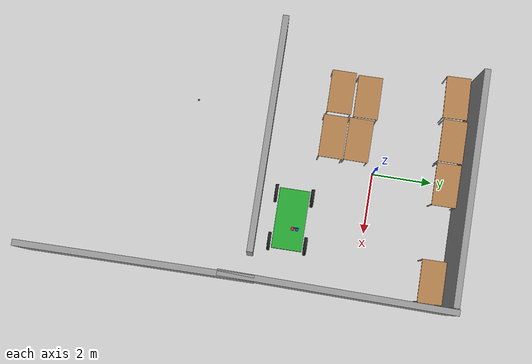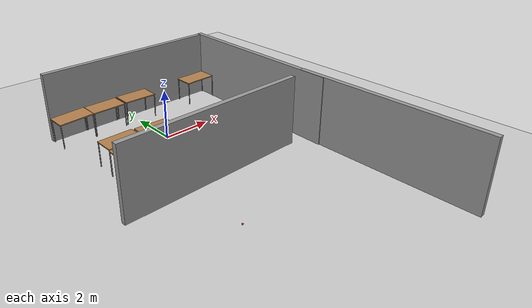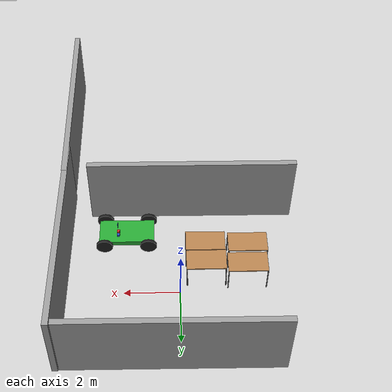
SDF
<sdf version="1.6">
 <world name="default">
  <light name="sun" type="directional">
   <pose>0 0 15 0 -0 0</pose>
   <diffuse>1 1 1 1</diffuse>
   <specular>0.1 0.1 0.1 1</specular>
   <attenuation>
    <range>1000</range>
    <constant>0.9</constant>
    <linear>0.01</linear>
    <quadratic>0.001</quadratic>
   </attenuation>
   <direction>-0.5 0.5 -1</direction>
  </light>
  <model name="ground_plane">
   <static>1</static>
   <link name="link">
    <collision name="collision">
     <geometry><plane><normal>0 0 1</normal><size>100 100</size></plane></geometry>
     <surface><friction><ode><mu>100</mu><mu2>50</mu2></ode></friction></surface>
    </collision>
    <visual name="visual">
     <transparency>1</transparency>
     <cast_shadows>0</cast_shadows>
     <geometry><plane><normal>0 0 1</normal><size>100 100</size></plane></geometry>
     <material>
      <script><uri>file://media/materials/scripts/gazebo.material</uri><name>Gazebo/Grey</name></script>
     </material>
    </visual>
   </link>
  </model>
  <gravity>0 0 -9.8</gravity>
  <magnetic_field>6e-06 2.3e-05 -4.2e-05</magnetic_field>
  <atmosphere type="adiabatic"/>
  <physics name="default_physics" default="0" type="ode">
   <max_step_size>0.001</max_step_size>
   <real_time_factor>1</real_time_factor>
   <real_time_update_rate>1000</real_time_update_rate>
  </physics>
  <scene><ambient>0.4 0.4 0.4 1</ambient><background>0.7 0.7 0.7 1</background><shadows>1</shadows></scene>
  <spherical_coordinates>
   <surface_model>EARTH_WGS84</surface_model>
   <latitude_deg>0</latitude_deg>
   <longitude_deg>0</longitude_deg>
   <elevation>0</elevation>
   <heading_deg>0</heading_deg>
  </spherical_coordinates>
  <model name="grey_wall">
   <static>1</static>
   <link name="link">
    <pose>0 0 1.4 0 -0 0</pose>
    <collision name="collision"><geometry><box><size>7.5 0.2 2.8</size></box></geometry></collision>
    <visual name="visual">
     <cast_shadows>0</cast_shadows>
     <geometry><box><size>7.5 0.2 2.8</size></box></geometry>
     <material>
      <script>
       <uri>model://grey_wall/materials/scripts</uri>
       <uri>model://grey_wall/materials/textures</uri>
       <name>vrc/grey_wall</name>
      </script>
     </material>
    </visual>
   </link>
   <pose>0.279501 2.87102 0 0 -0 0</pose>
  </model>
  <model name="table">
   <static>0</static>
   <link name="link">
    <collision name="surface">
     <pose>0 0 1 0 -0 0</pose>
     <geometry><box><size>1.5 0.8 0.03</size></box></geometry>
     <surface><friction><ode><mu>0.6</mu><mu2>0.6</mu2></ode></friction></surface>
    </collision>
    <visual name="visual1">
     <pose>0 0 1 0 -0 0</pose>
     <geometry><box><size>1.4 0.8 0.04</size></box></geometry>
     <material>
      <script><uri>file://media/materials/scripts/gazebo.material</uri><name>Gazebo/Wood</name></script>
     </material>
    </visual>
    <collision name="front_left_leg">
     <pose>0.68 0.38 0.5 0 -0 0</pose>
     <geometry><cylinder><radius>0.02</radius><length>1</length></cylinder></geometry>
    </collision>
    <visual name="front_left_leg">
     <pose>0.68 0.38 0.5 0 -0 0</pose>
     <geometry><cylinder><radius>0.02</radius><length>1</length></cylinder></geometry>
     <material>
      <script><uri>file://media/materials/scripts/gazebo.material</uri><name>Gazebo/Grey</name></script>
     </material>
    </visual>
    <collision name="front_right_leg">
     <pose>0.68 -0.38 0.5 0 -0 0</pose>
     <geometry><cylinder><radius>0.02</radius><length>1</length></cylinder></geometry>
    </collision>
    <visual name="front_right_leg">
     <pose>0.68 -0.38 0.5 0 -0 0</pose>
     <geometry><cylinder><radius>0.02</radius><length>1</length></cylinder></geometry>
     <material>
      <script><uri>file://media/materials/scripts/gazebo.material</uri><name>Gazebo/Grey</name></script>
     </material>
    </visual>
    <collision name="back_right_leg">
     <pose>-0.68 -0.38 0.5 0 -0 0</pose>
     <geometry><cylinder><radius>0.02</radius><length>1</length></cylinder></geometry>
    </collision>
    <visual name="back_right_leg">
     <pose>-0.68 -0.38 0.5 0 -0 0</pose>
     <geometry><cylinder><radius>0.02</radius><length>1</length></cylinder></geometry>
     <material>
      <script><uri>file://media/materials/scripts/gazebo.material</uri><name>Gazebo/Grey</name></script>
     </material>
    </visual>
    <collision name="back_left_leg">
     <pose>-0.68 0.38 0.5 0 -0 0</pose>
     <geometry><cylinder><radius>0.02</radius><length>1</length></cylinder></geometry>
    </collision>
    <visual name="back_left_leg">
     <pose>-0.68 0.38 0.5 0 -0 0</pose>
     <geometry><cylinder><radius>0.02</radius><length>1</length></cylinder></geometry>
     <material>
      <script><uri>file://media/materials/scripts/gazebo.material</uri><name>Gazebo/Grey</name></script>
     </material>
    </visual>
    <inertial>
     <inertia><ixx>1</ixx><ixy>0</ixy><ixz>0</ixz><iyy>1</iyy><iyz>0</iyz><izz>1</izz></inertia>
     <mass>1</mass>
    </inertial>
   </link>
   <pose>3.2906 2.30667 0.012437 -1e-05 -0.003477 0.006028</pose>
  </model>
  <model name="table_0">
   <static>0</static>
   <link name="link">
    <collision name="surface">
     <pose>0 0 1 0 -0 0</pose>
     <geometry><box><size>1.5 0.8 0.03</size></box></geometry>
     <surface><friction><ode><mu>0.6</mu><mu2>0.6</mu2></ode></friction></surface>
    </collision>
    <visual name="visual1">
     <pose>0 0 1 0 -0 0</pose>
     <geometry><box><size>1.4 0.8 0.04</size></box></geometry>
     <material>
      <script><uri>file://media/materials/scripts/gazebo.material</uri><name>Gazebo/Wood</name></script>
     </material>
    </visual>
    <collision name="front_left_leg">
     <pose>0.68 0.38 0.5 0 -0 0</pose>
     <geometry><cylinder><radius>0.02</radius><length>1</length></cylinder></geometry>
    </collision>
    <visual name="front_left_leg">
     <pose>0.68 0.38 0.5 0 -0 0</pose>
     <geometry><cylinder><radius>0.02</radius><length>1</length></cylinder></geometry>
     <material>
      <script><uri>file://media/materials/scripts/gazebo.material</uri><name>Gazebo/Grey</name></script>
     </material>
    </visual>
    <collision name="front_right_leg">
     <pose>0.68 -0.38 0.5 0 -0 0</pose>
     <geometry><cylinder><radius>0.02</radius><length>1</length></cylinder></geometry>
    </collision>
    <visual name="front_right_leg">
     <pose>0.68 -0.38 0.5 0 -0 0</pose>
     <geometry><cylinder><radius>0.02</radius><length>1</length></cylinder></geometry>
     <material>
      <script><uri>file://media/materials/scripts/gazebo.material</uri><name>Gazebo/Grey</name></script>
     </material>
    </visual>
    <collision name="back_right_leg">
     <pose>-0.68 -0.38 0.5 0 -0 0</pose>
     <geometry><cylinder><radius>0.02</radius><length>1</length></cylinder></geometry>
    </collision>
    <visual name="back_right_leg">
     <pose>-0.68 -0.38 0.5 0 -0 0</pose>
     <geometry><cylinder><radius>0.02</radius><length>1</length></cylinder></geometry>
     <material>
      <script><uri>file://media/materials/scripts/gazebo.material</uri><name>Gazebo/Grey</name></script>
     </material>
    </visual>
    <collision name="back_left_leg">
     <pose>-0.68 0.38 0.5 0 -0 0</pose>
     <geometry><cylinder><radius>0.02</radius><length>1</length></cylinder></geometry>
    </collision>
    <visual name="back_left_leg">
     <pose>-0.68 0.38 0.5 0 -0 0</pose>
     <geometry><cylinder><radius>0.02</radius><length>1</length></cylinder></geometry>
     <material>
      <script><uri>file://media/materials/scripts/gazebo.material</uri><name>Gazebo/Grey</name></script>
     </material>
    </visual>
    <inertial>
     <inertia><ixx>1</ixx><ixy>0</ixy><ixz>0</ixz><iyy>1</iyy><iyz>0</iyz><izz>1</izz></inertia>
     <mass>1</mass>
    </inertial>
   </link>
   <pose>0.094036 2.35281 0.025109 1e-06 0.021586 -0.000113</pose>
  </model>
  <model name="table_1">
   <static>0</static>
   <link name="link">
    <collision name="surface">
     <pose>0 0 1 0 -0 0</pose>
     <geometry><box><size>1.5 0.8 0.03</size></box></geometry>
     <surface><friction><ode><mu>0.6</mu><mu2>0.6</mu2></ode></friction></surface>
    </collision>
    <visual name="visual1">
     <pose>0 0 1 0 -0 0</pose>
     <geometry><box><size>1.4 0.8 0.04</size></box></geometry>
     <material>
      <script><uri>file://media/materials/scripts/gazebo.material</uri><name>Gazebo/Wood</name></script>
     </material>
    </visual>
    <collision name="front_left_leg">
     <pose>0.68 0.38 0.5 0 -0 0</pose>
     <geometry><cylinder><radius>0.02</radius><length>1</length></cylinder></geometry>
    </collision>
    <visual name="front_left_leg">
     <pose>0.68 0.38 0.5 0 -0 0</pose>
     <geometry><cylinder><radius>0.02</radius><length>1</length></cylinder></geometry>
     <material>
      <script><uri>file://media/materials/scripts/gazebo.material</uri><name>Gazebo/Grey</name></script>
     </material>
    </visual>
    <collision name="front_right_leg">
     <pose>0.68 -0.38 0.5 0 -0 0</pose>
     <geometry><cylinder><radius>0.02</radius><length>1</length></cylinder></geometry>
    </collision>
    <visual name="front_right_leg">
     <pose>0.68 -0.38 0.5 0 -0 0</pose>
     <geometry><cylinder><radius>0.02</radius><length>1</length></cylinder></geometry>
     <material>
      <script><uri>file://media/materials/scripts/gazebo.material</uri><name>Gazebo/Grey</name></script>
     </material>
    </visual>
    <collision name="back_right_leg">
     <pose>-0.68 -0.38 0.5 0 -0 0</pose>
     <geometry><cylinder><radius>0.02</radius><length>1</length></cylinder></geometry>
    </collision>
    <visual name="back_right_leg">
     <pose>-0.68 -0.38 0.5 0 -0 0</pose>
     <geometry><cylinder><radius>0.02</radius><length>1</length></cylinder></geometry>
     <material>
      <script><uri>file://media/materials/scripts/gazebo.material</uri><name>Gazebo/Grey</name></script>
     </material>
    </visual>
    <collision name="back_left_leg">
     <pose>-0.68 0.38 0.5 0 -0 0</pose>
     <geometry><cylinder><radius>0.02</radius><length>1</length></cylinder></geometry>
    </collision>
    <visual name="back_left_leg">
     <pose>-0.68 0.38 0.5 0 -0 0</pose>
     <geometry><cylinder><radius>0.02</radius><length>1</length></cylinder></geometry>
     <material>
      <script><uri>file://media/materials/scripts/gazebo.material</uri><name>Gazebo/Grey</name></script>
     </material>
    </visual>
    <inertial>
     <inertia><ixx>1</ixx><ixy>0</ixy><ixz>0</ixz><iyy>1</iyy><iyz>0</iyz><izz>1</izz></inertia>
     <mass>1</mass>
    </inertial>
   </link>
   <pose>-1.33518 2.37094 0.009991 4e-06 3e-06 -0.000114</pose>
  </model>
  <model name="table_2">
   <static>0</static>
   <link name="link">
    <collision name="surface">
     <pose>0 0 1 0 -0 0</pose>
     <geometry><box><size>1.5 0.8 0.03</size></box></geometry>
     <surface><friction><ode><mu>0.6</mu><mu2>0.6</mu2></ode></friction></surface>
    </collision>
    <visual name="visual1">
     <pose>0 0 1 0 -0 0</pose>
     <geometry><box><size>1.4 0.8 0.04</size></box></geometry>
     <material>
      <script><uri>file://media/materials/scripts/gazebo.material</uri><name>Gazebo/Wood</name></script>
     </material>
    </visual>
    <collision name="front_left_leg">
     <pose>0.68 0.38 0.5 0 -0 0</pose>
     <geometry><cylinder><radius>0.02</radius><length>1</length></cylinder></geometry>
    </collision>
    <visual name="front_left_leg">
     <pose>0.68 0.38 0.5 0 -0 0</pose>
     <geometry><cylinder><radius>0.02</radius><length>1</length></cylinder></geometry>
     <material>
      <script><uri>file://media/materials/scripts/gazebo.material</uri><name>Gazebo/Grey</name></script>
     </material>
    </visual>
    <collision name="front_right_leg">
     <pose>0.68 -0.38 0.5 0 -0 0</pose>
     <geometry><cylinder><radius>0.02</radius><length>1</length></cylinder></geometry>
    </collision>
    <visual name="front_right_leg">
     <pose>0.68 -0.38 0.5 0 -0 0</pose>
     <geometry><cylinder><radius>0.02</radius><length>1</length></cylinder></geometry>
     <material>
      <script><uri>file://media/materials/scripts/gazebo.material</uri><name>Gazebo/Grey</name></script>
     </material>
    </visual>
    <collision name="back_right_leg">
     <pose>-0.68 -0.38 0.5 0 -0 0</pose>
     <geometry><cylinder><radius>0.02</radius><length>1</length></cylinder></geometry>
    </collision>
    <visual name="back_right_leg">
     <pose>-0.68 -0.38 0.5 0 -0 0</pose>
     <geometry><cylinder><radius>0.02</radius><length>1</length></cylinder></geometry>
     <material>
      <script><uri>file://media/materials/scripts/gazebo.material</uri><name>Gazebo/Grey</name></script>
     </material>
    </visual>
    <collision name="back_left_leg">
     <pose>-0.68 0.38 0.5 0 -0 0</pose>
     <geometry><cylinder><radius>0.02</radius><length>1</length></cylinder></geometry>
    </collision>
    <visual name="back_left_leg">
     <pose>-0.68 0.38 0.5 0 -0 0</pose>
     <geometry><cylinder><radius>0.02</radius><length>1</length></cylinder></geometry>
     <material>
      <script><uri>file://media/materials/scripts/gazebo.material</uri><name>Gazebo/Grey</name></script>
     </material>
    </visual>
    <inertial>
     <inertia><ixx>1</ixx><ixy>0</ixy><ixz>0</ixz><iyy>1</iyy><iyz>0</iyz><izz>1</izz></inertia>
     <mass>1</mass>
    </inertial>
   </link>
   <pose>-2.75481 2.31482 0.025293 0 -0.021849 0.02398</pose>
  </model>
  <model name="table_3">
   <static>0</static>
   <link name="link">
    <collision name="surface">
     <pose>0 0 1 0 -0 0</pose>
     <geometry><box><size>1.5 0.8 0.03</size></box></geometry>
     <surface><friction><ode><mu>0.6</mu><mu2>0.6</mu2></ode></friction></surface>
    </collision>
    <visual name="visual1">
     <pose>0 0 1 0 -0 0</pose>
     <geometry><box><size>1.4 0.8 0.04</size></box></geometry>
     <material>
      <script><uri>file://media/materials/scripts/gazebo.material</uri><name>Gazebo/Wood</name></script>
     </material>
    </visual>
    <collision name="front_left_leg">
     <pose>0.68 0.38 0.5 0 -0 0</pose>
     <geometry><cylinder><radius>0.02</radius><length>1</length></cylinder></geometry>
    </collision>
    <visual name="front_left_leg">
     <pose>0.68 0.38 0.5 0 -0 0</pose>
     <geometry><cylinder><radius>0.02</radius><length>1</length></cylinder></geometry>
     <material>
      <script><uri>file://media/materials/scripts/gazebo.material</uri><name>Gazebo/Grey</name></script>
     </material>
    </visual>
    <collision name="front_right_leg">
     <pose>0.68 -0.38 0.5 0 -0 0</pose>
     <geometry><cylinder><radius>0.02</radius><length>1</length></cylinder></geometry>
    </collision>
    <visual name="front_right_leg">
     <pose>0.68 -0.38 0.5 0 -0 0</pose>
     <geometry><cylinder><radius>0.02</radius><length>1</length></cylinder></geometry>
     <material>
      <script><uri>file://media/materials/scripts/gazebo.material</uri><name>Gazebo/Grey</name></script>
     </material>
    </visual>
    <collision name="back_right_leg">
     <pose>-0.68 -0.38 0.5 0 -0 0</pose>
     <geometry><cylinder><radius>0.02</radius><length>1</length></cylinder></geometry>
    </collision>
    <visual name="back_right_leg">
     <pose>-0.68 -0.38 0.5 0 -0 0</pose>
     <geometry><cylinder><radius>0.02</radius><length>1</length></cylinder></geometry>
     <material>
      <script><uri>file://media/materials/scripts/gazebo.material</uri><name>Gazebo/Grey</name></script>
     </material>
    </visual>
    <collision name="back_left_leg">
     <pose>-0.68 0.38 0.5 0 -0 0</pose>
     <geometry><cylinder><radius>0.02</radius><length>1</length></cylinder></geometry>
    </collision>
    <visual name="back_left_leg">
     <pose>-0.68 0.38 0.5 0 -0 0</pose>
     <geometry><cylinder><radius>0.02</radius><length>1</length></cylinder></geometry>
     <material>
      <script><uri>file://media/materials/scripts/gazebo.material</uri><name>Gazebo/Grey</name></script>
     </material>
    </visual>
    <inertial>
     <inertia><ixx>1</ixx><ixy>0</ixy><ixz>0</ixz><iyy>1</iyy><iyz>0</iyz><izz>1</izz></inertia>
     <mass>1</mass>
    </inertial>
   </link>
   <pose>-2.35748 -0.563941 0.01 -5e-06 2e-06 0.007193</pose>
  </model>
  <model name="table_4">
   <static>0</static>
   <link name="link">
    <collision name="surface">
     <pose>0 0 1 0 -0 0</pose>
     <geometry><box><size>1.5 0.8 0.03</size></box></geometry>
     <surface><friction><ode><mu>0.6</mu><mu2>0.6</mu2></ode></friction></surface>
    </collision>
    <visual name="visual1">
     <pose>0 0 1 0 -0 0</pose>
     <geometry><box><size>1.4 0.8 0.04</size></box></geometry>
     <material>
      <script><uri>file://media/materials/scripts/gazebo.material</uri><name>Gazebo/Wood</name></script>
     </material>
    </visual>
    <collision name="front_left_leg">
     <pose>0.68 0.38 0.5 0 -0 0</pose>
     <geometry><cylinder><radius>0.02</radius><length>1</length></cylinder></geometry>
    </collision>
    <visual name="front_left_leg">
     <pose>0.68 0.38 0.5 0 -0 0</pose>
     <geometry><cylinder><radius>0.02</radius><length>1</length></cylinder></geometry>
     <material>
      <script><uri>file://media/materials/scripts/gazebo.material</uri><name>Gazebo/Grey</name></script>
     </material>
    </visual>
    <collision name="front_right_leg">
     <pose>0.68 -0.38 0.5 0 -0 0</pose>
     <geometry><cylinder><radius>0.02</radius><length>1</length></cylinder></geometry>
    </collision>
    <visual name="front_right_leg">
     <pose>0.68 -0.38 0.5 0 -0 0</pose>
     <geometry><cylinder><radius>0.02</radius><length>1</length></cylinder></geometry>
     <material>
      <script><uri>file://media/materials/scripts/gazebo.material</uri><name>Gazebo/Grey</name></script>
     </material>
    </visual>
    <collision name="back_right_leg">
     <pose>-0.68 -0.38 0.5 0 -0 0</pose>
     <geometry><cylinder><radius>0.02</radius><length>1</length></cylinder></geometry>
    </collision>
    <visual name="back_right_leg">
     <pose>-0.68 -0.38 0.5 0 -0 0</pose>
     <geometry><cylinder><radius>0.02</radius><length>1</length></cylinder></geometry>
     <material>
      <script><uri>file://media/materials/scripts/gazebo.material</uri><name>Gazebo/Grey</name></script>
     </material>
    </visual>
    <collision name="back_left_leg">
     <pose>-0.68 0.38 0.5 0 -0 0</pose>
     <geometry><cylinder><radius>0.02</radius><length>1</length></cylinder></geometry>
    </collision>
    <visual name="back_left_leg">
     <pose>-0.68 0.38 0.5 0 -0 0</pose>
     <geometry><cylinder><radius>0.02</radius><length>1</length></cylinder></geometry>
     <material>
      <script><uri>file://media/materials/scripts/gazebo.material</uri><name>Gazebo/Grey</name></script>
     </material>
    </visual>
    <inertial>
     <inertia><ixx>1</ixx><ixy>0</ixy><ixz>0</ixz><iyy>1</iyy><iyz>0</iyz><izz>1</izz></inertia>
     <mass>1</mass>
    </inertial>
   </link>
   <pose>-0.933853 -0.665865 0.025231 -1e-06 0.021753 -0.008935</pose>
  </model>
  <model name="table_5">
   <static>0</static>
   <link name="link">
    <collision name="surface">
     <pose>0 0 1 0 -0 0</pose>
     <geometry><box><size>1.5 0.8 0.03</size></box></geometry>
     <surface><friction><ode><mu>0.6</mu><mu2>0.6</mu2></ode></friction></surface>
    </collision>
    <visual name="visual1">
     <pose>0 0 1 0 -0 0</pose>
     <geometry><box><size>1.4 0.8 0.04</size></box></geometry>
     <material>
      <script><uri>file://media/materials/scripts/gazebo.material</uri><name>Gazebo/Wood</name></script>
     </material>
    </visual>
    <collision name="front_left_leg">
     <pose>0.68 0.38 0.5 0 -0 0</pose>
     <geometry><cylinder><radius>0.02</radius><length>1</length></cylinder></geometry>
    </collision>
    <visual name="front_left_leg">
     <pose>0.68 0.38 0.5 0 -0 0</pose>
     <geometry><cylinder><radius>0.02</radius><length>1</length></cylinder></geometry>
     <material>
      <script><uri>file://media/materials/scripts/gazebo.material</uri><name>Gazebo/Grey</name></script>
     </material>
    </visual>
    <collision name="front_right_leg">
     <pose>0.68 -0.38 0.5 0 -0 0</pose>
     <geometry><cylinder><radius>0.02</radius><length>1</length></cylinder></geometry>
    </collision>
    <visual name="front_right_leg">
     <pose>0.68 -0.38 0.5 0 -0 0</pose>
     <geometry><cylinder><radius>0.02</radius><length>1</length></cylinder></geometry>
     <material>
      <script><uri>file://media/materials/scripts/gazebo.material</uri><name>Gazebo/Grey</name></script>
     </material>
    </visual>
    <collision name="back_right_leg">
     <pose>-0.68 -0.38 0.5 0 -0 0</pose>
     <geometry><cylinder><radius>0.02</radius><length>1</length></cylinder></geometry>
    </collision>
    <visual name="back_right_leg">
     <pose>-0.68 -0.38 0.5 0 -0 0</pose>
     <geometry><cylinder><radius>0.02</radius><length>1</length></cylinder></geometry>
     <material>
      <script><uri>file://media/materials/scripts/gazebo.material</uri><name>Gazebo/Grey</name></script>
     </material>
    </visual>
    <collision name="back_left_leg">
     <pose>-0.68 0.38 0.5 0 -0 0</pose>
     <geometry><cylinder><radius>0.02</radius><length>1</length></cylinder></geometry>
    </collision>
    <visual name="back_left_leg">
     <pose>-0.68 0.38 0.5 0 -0 0</pose>
     <geometry><cylinder><radius>0.02</radius><length>1</length></cylinder></geometry>
     <material>
      <script><uri>file://media/materials/scripts/gazebo.material</uri><name>Gazebo/Grey</name></script>
     </material>
    </visual>
    <inertial>
     <inertia><ixx>1</ixx><ixy>0</ixy><ixz>0</ixz><iyy>1</iyy><iyz>0</iyz><izz>1</izz></inertia>
     <mass>1</mass>
    </inertial>
   </link>
   <pose>-2.4027 -1.44366 0.009991 0 0 -3.7e-05</pose>
  </model>
  <model name="table_6">
   <static>0</static>
   <link name="link">
    <collision name="surface">
     <pose>0 0 1 0 -0 0</pose>
     <geometry><box><size>1.5 0.8 0.03</size></box></geometry>
     <surface><friction><ode><mu>0.6</mu><mu2>0.6</mu2></ode></friction></surface>
    </collision>
    <visual name="visual1">
     <pose>0 0 1 0 -0 0</pose>
     <geometry><box><size>1.4 0.8 0.04</size></box></geometry>
     <material>
      <script><uri>file://media/materials/scripts/gazebo.material</uri><name>Gazebo/Wood</name></script>
     </material>
    </visual>
    <collision name="front_left_leg">
     <pose>0.68 0.38 0.5 0 -0 0</pose>
     <geometry><cylinder><radius>0.02</radius><length>1</length></cylinder></geometry>
    </collision>
    <visual name="front_left_leg">
     <pose>0.68 0.38 0.5 0 -0 0</pose>
     <geometry><cylinder><radius>0.02</radius><length>1</length></cylinder></geometry>
     <material>
      <script><uri>file://media/materials/scripts/gazebo.material</uri><name>Gazebo/Grey</name></script>
     </material>
    </visual>
    <collision name="front_right_leg">
     <pose>0.68 -0.38 0.5 0 -0 0</pose>
     <geometry><cylinder><radius>0.02</radius><length>1</length></cylinder></geometry>
    </collision>
    <visual name="front_right_leg">
     <pose>0.68 -0.38 0.5 0 -0 0</pose>
     <geometry><cylinder><radius>0.02</radius><length>1</length></cylinder></geometry>
     <material>
      <script><uri>file://media/materials/scripts/gazebo.material</uri><name>Gazebo/Grey</name></script>
     </material>
    </visual>
    <collision name="back_right_leg">
     <pose>-0.68 -0.38 0.5 0 -0 0</pose>
     <geometry><cylinder><radius>0.02</radius><length>1</length></cylinder></geometry>
    </collision>
    <visual name="back_right_leg">
     <pose>-0.68 -0.38 0.5 0 -0 0</pose>
     <geometry><cylinder><radius>0.02</radius><length>1</length></cylinder></geometry>
     <material>
      <script><uri>file://media/materials/scripts/gazebo.material</uri><name>Gazebo/Grey</name></script>
     </material>
    </visual>
    <collision name="back_left_leg">
     <pose>-0.68 0.38 0.5 0 -0 0</pose>
     <geometry><cylinder><radius>0.02</radius><length>1</length></cylinder></geometry>
    </collision>
    <visual name="back_left_leg">
     <pose>-0.68 0.38 0.5 0 -0 0</pose>
     <geometry><cylinder><radius>0.02</radius><length>1</length></cylinder></geometry>
     <material>
      <script><uri>file://media/materials/scripts/gazebo.material</uri><name>Gazebo/Grey</name></script>
     </material>
    </visual>
    <inertial>
     <inertia><ixx>1</ixx><ixy>0</ixy><ixz>0</ixz><iyy>1</iyy><iyz>0</iyz><izz>1</izz></inertia>
     <mass>1</mass>
    </inertial>
   </link>
   <pose>-0.902699 -1.50514 0.01 0 0 -3.7e-05</pose>
  </model>
  <model name="car">
   <link name="chassis">
    <pose>0 0 0.3 0 -0 0</pose>
    <collision name="collision"><geometry><box><size>2 1 0.2</size></box></geometry></collision>
    <visual name="visual">
     <geometry><box><size>2 1 0.2</size></box></geometry>
     <material>
      <script><uri>file://media/materials/scripts/gazebo.material</uri><name>Gazebo/Green</name></script>
     </material>
    </visual>
    <inertial>
     <inertia><ixx>1</ixx><ixy>0</ixy><ixz>0</ixz><iyy>1</iyy><iyz>0</iyz><izz>1</izz></inertia>
     <mass>1</mass>
    </inertial>
   </link>
   <link name="front_left_wheel">
    <pose>0.8 0.6 0.3 -0 1.5707 1.5707</pose>
    <collision name="collision">
     <geometry><cylinder><radius>0.3</radius><length>0.1</length></cylinder></geometry>
    </collision>
    <visual name="visual">
     <geometry><cylinder><radius>0.3</radius><length>0.1</length></cylinder></geometry>
     <material>
      <script><uri>file://media/materials/scripts/gazebo.material</uri><name>Gazebo/Black</name></script>
     </material>
    </visual>
    <inertial>
     <inertia><ixx>1</ixx><ixy>0</ixy><ixz>0</ixz><iyy>1</iyy><iyz>0</iyz><izz>1</izz></inertia>
     <mass>1</mass>
    </inertial>
   </link>
   <link name="front_right_wheel">
    <pose>0.8 -0.6 0.3 -0 1.5707 1.5707</pose>
    <collision name="collision">
     <geometry><cylinder><radius>0.3</radius><length>0.1</length></cylinder></geometry>
    </collision>
    <visual name="visual">
     <geometry><cylinder><radius>0.3</radius><length>0.1</length></cylinder></geometry>
     <material>
      <script><uri>file://media/materials/scripts/gazebo.material</uri><name>Gazebo/Black</name></script>
     </material>
    </visual>
    <inertial>
     <inertia><ixx>1</ixx><ixy>0</ixy><ixz>0</ixz><iyy>1</iyy><iyz>0</iyz><izz>1</izz></inertia>
     <mass>1</mass>
    </inertial>
   </link>
   <link name="back_right_wheel">
    <pose>-0.8 -0.6 0.3 -0 1.5707 1.5707</pose>
    <collision name="collision">
     <geometry><cylinder><radius>0.3</radius><length>0.1</length></cylinder></geometry>
    </collision>
    <visual name="visual">
     <geometry><cylinder><radius>0.3</radius><length>0.1</length></cylinder></geometry>
     <material>
      <script><uri>file://media/materials/scripts/gazebo.material</uri><name>Gazebo/Black</name></script>
     </material>
    </visual>
    <inertial>
     <inertia><ixx>1</ixx><ixy>0</ixy><ixz>0</ixz><iyy>1</iyy><iyz>0</iyz><izz>1</izz></inertia>
     <mass>1</mass>
    </inertial>
   </link>
   <link name="back_left_wheel">
    <pose>-0.8 0.6 0.3 -0 1.5707 1.5707</pose>
    <collision name="collision">
     <geometry><cylinder><radius>0.3</radius><length>0.1</length></cylinder></geometry>
    </collision>
    <visual name="visual">
     <geometry><cylinder><radius>0.3</radius><length>0.1</length></cylinder></geometry>
     <material>
      <script><uri>file://media/materials/scripts/gazebo.material</uri><name>Gazebo/Black</name></script>
     </material>
    </visual>
    <inertial>
     <inertia><ixx>1</ixx><ixy>0</ixy><ixz>0</ixz><iyy>1</iyy><iyz>0</iyz><izz>1</izz></inertia>
     <mass>1</mass>
    </inertial>
   </link>
   <link name="gas_pedal">
    <pose>0.3 0.1 0.5 0 -0 0</pose>
    <collision name="collision"><geometry><box><size>0.1 0.1 0.1</size></box></geometry></collision>
    <visual name="visual">
     <geometry><box><size>0.1 0.1 0.1</size></box></geometry>
     <material>
      <script><uri>file://media/materials/scripts/gazebo.material</uri><name>Gazebo/Red</name></script>
     </material>
    </visual>
    <inertial>
     <inertia><ixx>1</ixx><ixy>0</ixy><ixz>0</ixz><iyy>1</iyy><iyz>0</iyz><izz>1</izz></inertia>
     <mass>1</mass>
    </inertial>
   </link>
   <link name="brake_pedal">
    <pose>0.3 0.25 0.5 0 -0 0</pose>
    <collision name="collision"><geometry><box><size>0.1 0.1 0.1</size></box></geometry></collision>
    <visual name="visual">
     <geometry><box><size>0.1 0.1 0.1</size></box></geometry>
     <material>
      <script><uri>file://media/materials/scripts/gazebo.material</uri><name>Gazebo/Blue</name></script>
     </material>
    </visual>
    <inertial>
     <inertia><ixx>1</ixx><ixy>0</ixy><ixz>0</ixz><iyy>1</iyy><iyz>0</iyz><izz>1</izz></inertia>
     <mass>1</mass>
    </inertial>
   </link>
   <link name="steering_wheel">
    <pose>0.3 0.2 1 0 1.5707 0</pose>
    <collision name="collision">
     <geometry><cylinder><radius>0.1</radius><length>0.01</length></cylinder></geometry>
    </collision>
    <visual name="visual">
     <geometry><cylinder><radius>0.1</radius><length>0.01</length></cylinder></geometry>
     <material>
      <script><uri>file://media/materials/scripts/gazebo.material</uri><name>Gazebo/Blue</name></script>
     </material>
    </visual>
    <inertial>
     <inertia><ixx>1</ixx><ixy>0</ixy><ixz>0</ixz><iyy>1</iyy><iyz>0</iyz><izz>1</izz></inertia>
     <mass>1</mass>
    </inertial>
   </link>
   <joint name="gas_joint" type="prismatic">
    <parent>chassis</parent>
    <child>gas_pedal</child>
    <axis>
     <xyz>1 0 0</xyz>
     <limit><lower>0</lower><upper>0.2</upper></limit>
     <use_parent_model_frame>1</use_parent_model_frame>
     <dynamics><spring_reference>0</spring_reference><spring_stiffness>0</spring_stiffness></dynamics>
    </axis>
   </joint>
   <joint name="brake_joint" type="prismatic">
    <parent>chassis</parent>
    <child>brake_pedal</child>
    <axis>
     <xyz>1 0 0</xyz>
     <limit><lower>0</lower><upper>0.2</upper></limit>
     <use_parent_model_frame>1</use_parent_model_frame>
     <dynamics><spring_reference>0</spring_reference><spring_stiffness>0</spring_stiffness></dynamics>
    </axis>
   </joint>
   <joint name="steering_joint" type="revolute">
    <parent>chassis</parent>
    <child>steering_wheel</child>
    <axis>
     <xyz>1 0 0</xyz>
     <limit><lower>-7.853</lower><upper>7.853</upper></limit>
     <use_parent_model_frame>1</use_parent_model_frame>
     <dynamics><spring_reference>0</spring_reference><spring_stiffness>0</spring_stiffness></dynamics>
    </axis>
   </joint>
   <joint name="front_left_joint" type="revolute2">
    <parent>chassis</parent>
    <child>front_left_wheel</child>
    <axis>
     <xyz>0 0 1</xyz>
     <limit><lower>8.63236e-06</lower><upper>8.63236e-06</upper></limit>
     <use_parent_model_frame>1</use_parent_model_frame>
     <dynamics><spring_reference>0</spring_reference><spring_stiffness>0</spring_stiffness></dynamics>
    </axis>
    <axis2>
     <xyz>0 1 0</xyz>
     <use_parent_model_frame>1</use_parent_model_frame>
     <dynamics><spring_reference>0</spring_reference><spring_stiffness>0</spring_stiffness></dynamics>
    </axis2>
    <physics><ode><limit><cfm>0</cfm><erp>0.9</erp></limit></ode></physics>
   </joint>
   <joint name="front_right_joint" type="revolute2">
    <parent>chassis</parent>
    <child>front_right_wheel</child>
    <axis>
     <xyz>0 0 1</xyz>
     <limit><lower>8.63236e-06</lower><upper>8.63236e-06</upper></limit>
     <use_parent_model_frame>1</use_parent_model_frame>
     <dynamics><spring_reference>0</spring_reference><spring_stiffness>0</spring_stiffness></dynamics>
    </axis>
    <axis2>
     <xyz>0 1 0</xyz>
     <use_parent_model_frame>1</use_parent_model_frame>
     <dynamics><spring_reference>0</spring_reference><spring_stiffness>0</spring_stiffness></dynamics>
    </axis2>
    <physics><ode><limit><cfm>0</cfm><erp>0.9</erp></limit></ode></physics>
   </joint>
   <joint name="back_right_joint" type="revolute2">
    <parent>chassis</parent>
    <child>back_right_wheel</child>
    <axis>
     <xyz>0 0 1</xyz>
     <limit><lower>0</lower><upper>0</upper></limit>
     <use_parent_model_frame>1</use_parent_model_frame>
     <dynamics><spring_reference>0</spring_reference><spring_stiffness>0</spring_stiffness></dynamics>
    </axis>
    <axis2>
     <xyz>0 1 0</xyz>
     <use_parent_model_frame>1</use_parent_model_frame>
     <dynamics><spring_reference>0</spring_reference><spring_stiffness>0</spring_stiffness></dynamics>
    </axis2>
    <physics><ode><limit><cfm>0</cfm><erp>0.9</erp></limit></ode></physics>
   </joint>
   <joint name="back_left_joint" type="revolute2">
    <parent>chassis</parent>
    <child>back_left_wheel</child>
    <axis>
     <xyz>0 0 1</xyz>
     <limit><lower>0</lower><upper>0</upper></limit>
     <use_parent_model_frame>1</use_parent_model_frame>
     <dynamics><spring_reference>0</spring_reference><spring_stiffness>0</spring_stiffness></dynamics>
    </axis>
    <axis2>
     <xyz>0 1 0</xyz>
     <use_parent_model_frame>1</use_parent_model_frame>
     <dynamics><spring_reference>0</spring_reference><spring_stiffness>0</spring_stiffness></dynamics>
    </axis2>
    <physics><ode><limit><cfm>0</cfm><erp>0.9</erp></limit></ode></physics>
   </joint>
   <plugin name="vehicle" filename="libVehiclePlugin.so">
    <front_left>front_left_joint</front_left>
    <front_right>front_right_joint</front_right>
    <back_left>back_left_joint</back_left>
    <back_right>back_right_joint</back_right>
    <gas>gas_joint</gas>
    <brake>brake_joint</brake>
    <steering>steering_joint</steering>
    <front_power>10</front_power>
    <rear_power>10</rear_power>
    <tire_angle_range>0.5</tire_angle_range>
    <max_speed>10</max_speed>
    <aero_load>0.1</aero_load>
   </plugin>
   <pose>1.93643 -2.46174 0.007385 -0.000273 0.000907 0.000183</pose>
  </model>
  <model name="grey_wall_0">
   <static>1</static>
   <link name="link">
    <pose>0 0 1.4 0 -0 0</pose>
    <collision name="collision"><geometry><box><size>7.5 0.2 2.8</size></box></geometry></collision>
    <visual name="visual">
     <cast_shadows>0</cast_shadows>
     <geometry><box><size>7.5 0.2 2.8</size></box></geometry>
     <material>
      <script>
       <uri>model://grey_wall/materials/scripts</uri>
       <uri>model://grey_wall/materials/textures</uri>
       <name>vrc/grey_wall</name>
      </script>
     </material>
    </visual>
   </link>
   <pose>4.10346 -0.753936 0 0 0 -1.58435</pose>
  </model>
  <model name="grey_wall_1">
   <static>1</static>
   <link name="link">
    <pose>0 0 1.4 0 -0 0</pose>
    <collision name="collision"><geometry><box><size>7.5 0.2 2.8</size></box></geometry></collision>
    <visual name="visual">
     <cast_shadows>0</cast_shadows>
     <geometry><box><size>7.5 0.2 2.8</size></box></geometry>
     <material>
      <script>
       <uri>model://grey_wall/materials/scripts</uri>
       <uri>model://grey_wall/materials/textures</uri>
       <name>vrc/grey_wall</name>
      </script>
     </material>
    </visual>
   </link>
   <pose>-0.450861 -3.60791 0 0 -0 0</pose>
  </model>
  <model name="grey_wall_2">
   <static>1</static>
   <link name="link">
    <pose>0 0 1.4 0 -0 0</pose>
    <collision name="collision"><geometry><box><size>7.5 0.2 2.8</size></box></geometry></collision>
    <visual name="visual">
     <cast_shadows>0</cast_shadows>
     <geometry><box><size>7.5 0.2 2.8</size></box></geometry>
     <material>
      <script>
       <uri>model://grey_wall/materials/scripts</uri>
       <uri>model://grey_wall/materials/textures</uri>
       <name>vrc/grey_wall</name>
      </script>
     </material>
    </visual>
   </link>
   <pose>4.10246 -7.10094 0 0 -0 1.57547</pose>
  </model>
  <model name="RoboCup SPL Ball">
   <static>0</static>
   <link name="ball">
    <inertial>
     <mass>0.0056</mass>
     <inertia>
      <ixx>2.37e-06</ixx>
      <iyy>2.37e-06</iyy>
      <izz>2.37e-06</izz>
      <ixy>0</ixy>
      <ixz>0</ixz>
      <iyz>0</iyz>
     </inertia>
    </inertial>
    <collision name="collision"><geometry><sphere><radius>0.0325</radius></sphere></geometry></collision>
    <visual name="visual">
     <geometry><sphere><radius>0.0325</radius></sphere></geometry>
     <material>
      <script><uri>file://media/materials/scripts/gazebo.material</uri><name>Gazebo/RedBright</name></script>
     </material>
    </visual>
   </link>
   <pose>-1.6016 -6.10315 0.0425 0 -0 0</pose>
  </model>
 </world>
</sdf>
